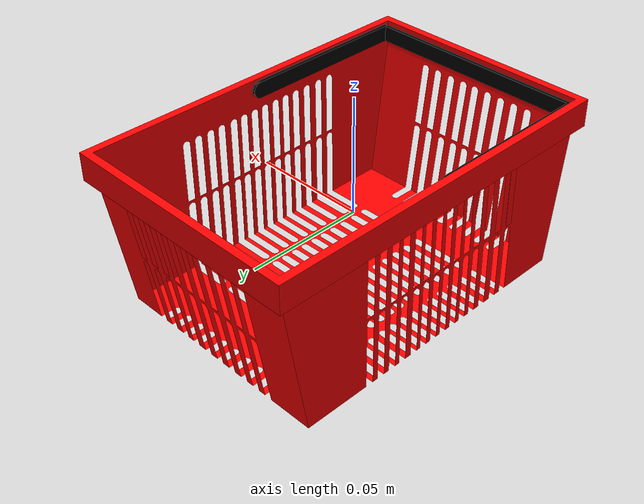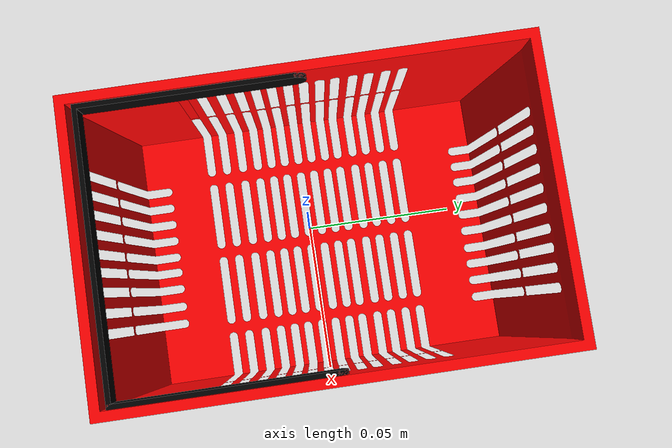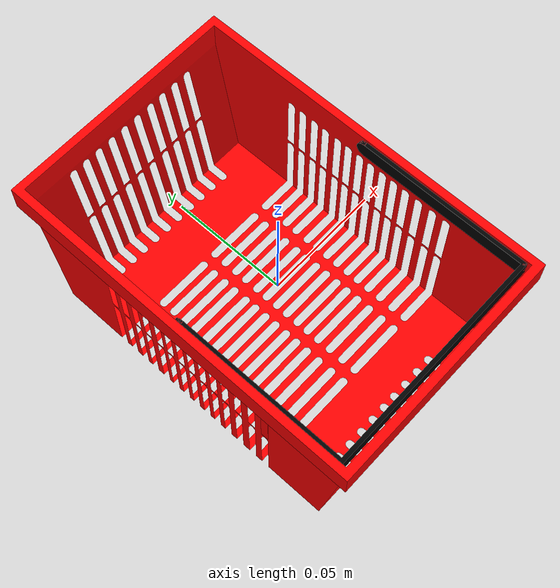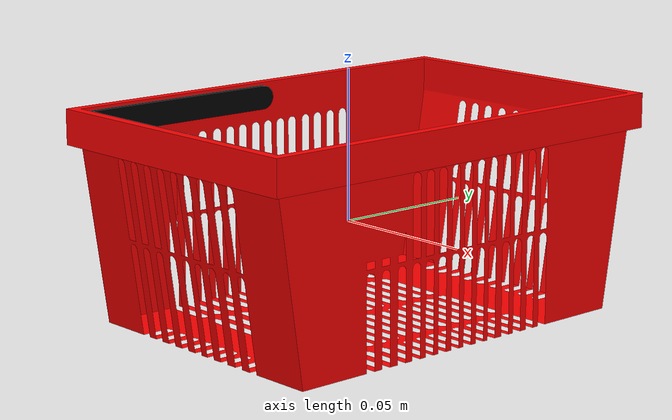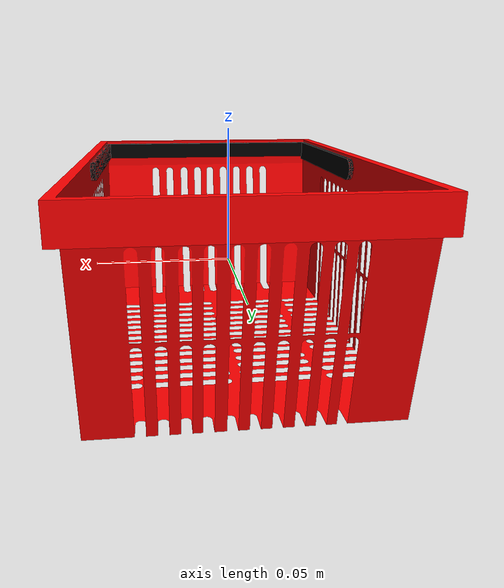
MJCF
<mujoco model="partnet_100466">
  <option iterations="50" timestep="0.001" solver="PGS" gravity="0 0 -9.81" />
  <compiler angle="radian" meshdir="textured_objs_thickness" eulerseq="zyx" autolimits="true" />
  <default>
    <mesh scale="0.1 0.1 0.1" />
    <joint limited="true" damping="0.01" armature="0.01" frictionloss="0.01" />
    <motor ctrllimited="true" />
    <equality solref="0.001 2" />
    <default class="visual">
      <geom condim="1" contype="0" conaffinity="0" group="2" />
    </default>
    <default class="collision">
      <geom condim="4" contype="1" conaffinity="14" friction="0.9 0.2 0.2" solref="0.001 2" group="3" />
    </default>
  </default>
  <asset>
    <material name="original-5_material_0_0" specular="0.06666666666666667" shininess="0.03" rgba="1 0 0 1" />
    <mesh file="original-5/original-5.obj" name="original-5" />
    <material name="original-1_1_material_0_0" specular="0.06666666666666667" shininess="0.03" rgba="1 0 0 1" />
    <material name="original-1_0_material_1_0" specular="0.06666666666666667" shininess="0.03" rgba="0 0 0 1" />
    <mesh file="original-1/original-1_0.obj" name="original-1_0" />
    <mesh file="original-1/original-1_1.obj" name="original-1_1" />
    <material name="original-4_material_0_0" specular="0.06666666666666667" shininess="0.03" rgba="1 0 0 1" />
    <mesh file="original-4/original-4.obj" name="original-4" />
    <material name="original-3_material_0_0" specular="0.06666666666666667" shininess="0.03" rgba="1 0 0 1" />
    <mesh file="original-3/original-3.obj" name="original-3" />
  </asset>
  <worldbody>
    <light directional="true" pos="0 0 0.05" dir="0 0 -1" castshadow="false" />
    <body name="link_1" pos="0.0 0.0 0.0" quat="0.4999999999999998 0.5 -0.5000000000000002 -0.5">
      <geom pos="0.0 0.0 0.0" quat="1 0 0 0" type="mesh" mesh="original-4" material="original-4_material_0_0" density="0" class="visual" />
      <geom pos="0.0 0.0 0.0" quat="1 0 0 0" type="mesh" mesh="original-3" material="original-3_material_0_0" density="0" class="visual" />
      <geom pos="0.0 0.0 0.0" quat="1 0 0 0" type="mesh" mesh="original-5" material="original-5_material_0_0" density="0" class="visual" />
      <geom pos="0.0 0.0 0.0" quat="1 0 0 0" type="mesh" mesh="original-4" material="original-4_material_0_0" class="collision" />
      <geom pos="0.0 0.0 0.0" quat="1 0 0 0" type="mesh" mesh="original-3" material="original-3_material_0_0" class="collision" />
      <geom pos="0.0 0.0 0.0" quat="1 0 0 0" type="mesh" mesh="original-5" material="original-5_material_0_0" class="collision" />
      <body name="link_0" pos="-0.002209335104562346 0.03504974806266648 0.0">
        <joint name="joint_0" pos="0 0 0" axis="0 0 1" range="0.0 3.141592653589793" type="hinge" />
        <geom pos="0.002209335104562346 -0.03504974806266648 0.0" quat="1 0 0 0" type="mesh" mesh="original-1_0" material="original-1_0_material_1_0" density="0" class="visual" />
        <geom pos="0.002209335104562346 -0.03504974806266648 0.0" quat="1 0 0 0" type="mesh" mesh="original-1_1" material="original-1_1_material_0_0" density="0" class="visual" />
        <geom pos="0.002209335104562346 -0.03504974806266648 0.0" quat="1 0 0 0" type="mesh" mesh="original-1_0" material="original-1_0_material_1_0" class="collision" />
        <geom pos="0.002209335104562346 -0.03504974806266648 0.0" quat="1 0 0 0" type="mesh" mesh="original-1_1" material="original-1_1_material_0_0" class="collision" />
      </body>
    </body>
  </worldbody>
  <actuator>
    <motor name="joint_0" joint="joint_0" ctrllimited="true" ctrlrange="-1 1" gear="1" />
  </actuator>
</mujoco>
